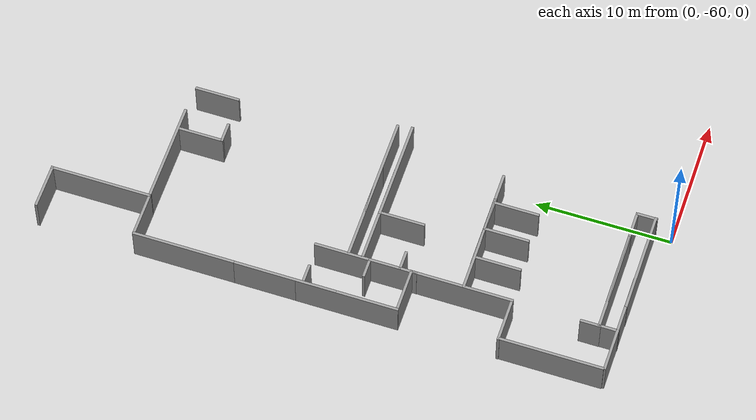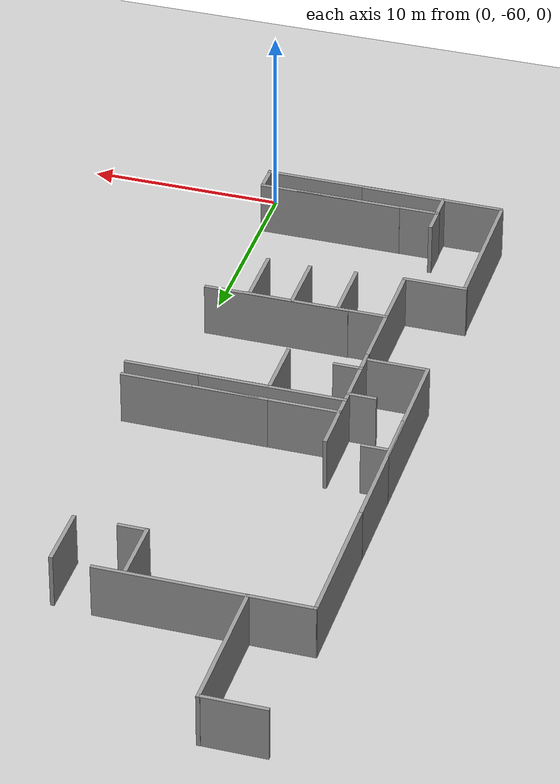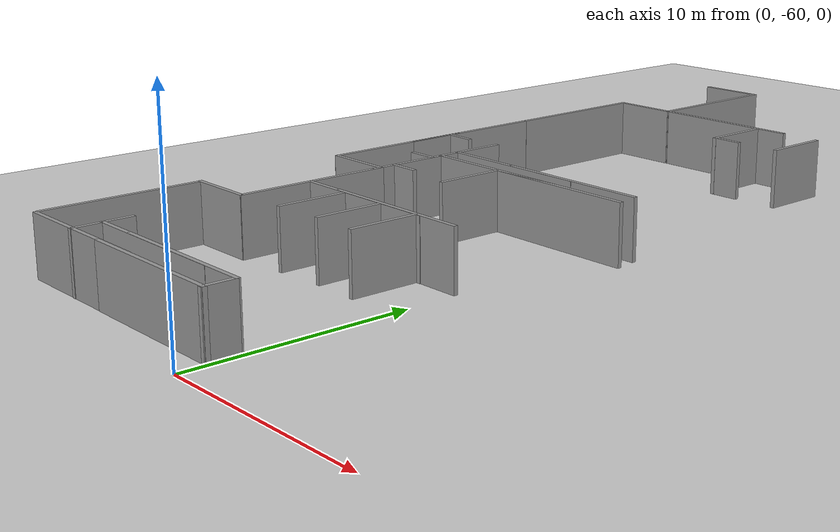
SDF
<sdf version="1.7">
 <world name="default">
  <model name="ground_plane">
   <static>1</static>
   <link name="link">
    <collision name="collision">
     <geometry><plane><normal>0 0 1</normal><size>100 100</size></plane></geometry>
     <surface>
      <contact><collide_bitmask>65535</collide_bitmask></contact>
      <friction><ode><mu>100</mu><mu2>50</mu2></ode></friction>
     </surface>
    </collision>
    <visual name="visual">
     <cast_shadows>0</cast_shadows>
     <geometry><plane><normal>0 0 1</normal><size>100 100</size></plane></geometry>
     <material>
      <script><uri>file://media/materials/scripts/gazebo.material</uri><name>Gazebo/Grey</name></script>
     </material>
    </visual>
   </link>
  </model>
  <model name="grey_wall_clone_2_clone_clone_0">
   <static>1</static>
   <link name="link">
    <pose>0 0 1.4 0 -0 0</pose>
    <collision name="collision"><geometry><box><size>7.5 0.2 2.8</size></box></geometry></collision>
    <visual name="visual">
     <cast_shadows>0</cast_shadows>
     <geometry><box><size>7.5 0.2 2.8</size></box></geometry>
     <material>
      <script>
       <uri>model://grey_wall/materials/scripts</uri>
       <uri>model://grey_wall/materials/textures</uri>
       <name>vrc/grey_wall</name>
      </script>
     </material>
    </visual>
   </link>
   <pose>-9.41065 -20.8124 0 0 0 -1.5708</pose>
  </model>
  <model name="half_grey_wall_clone_clone_0">
   <link name="link">
    <pose>0 0 1.4 0 -0 0</pose>
    <inertial>
     <mass>1</mass>
     <inertia><ixx>1</ixx><ixy>0</ixy><ixz>0</ixz><iyy>1</iyy><iyz>0</iyz><izz>1</izz></inertia>
    </inertial>
    <visual name="visual">
     <cast_shadows>0</cast_shadows>
     <geometry><box><size>3.3 0.2 2.8</size></box></geometry>
     <material>
      <script>
       <uri>model://grey_wall/materials/scripts</uri>
       <uri>model://grey_wall/materials/textures</uri>
       <name>vrc/grey_wall</name>
      </script>
      <shader type="pixel"><normal_map>__default__</normal_map></shader>
      <ambient>1 1 1 1</ambient>
      <diffuse>1 1 1 1</diffuse>
      <specular>0 0 0 1</specular>
      <emissive>0 0 0 1</emissive>
     </material>
    </visual>
    <collision name="collision">
     <geometry><box><size>7.5 0.2 2.8</size></box></geometry>
     <surface>
      <friction>
       <ode><mu>1</mu><mu2>1</mu2><fdir1>0 0 0</fdir1><slip1>0</slip1><slip2>0</slip2></ode>
       <torsional>
        <coefficient>1</coefficient>
        <patch_radius>0</patch_radius>
        <surface_radius>0</surface_radius>
        <use_patch_radius>1</use_patch_radius>
        <ode><slip>0</slip></ode>
       </torsional>
      </friction>
      <bounce><restitution_coefficient>0</restitution_coefficient><threshold>1e+06</threshold></bounce>
      <contact>
       <collide_without_contact>0</collide_without_contact>
       <collide_without_contact_bitmask>1</collide_without_contact_bitmask>
       <collide_bitmask>1</collide_bitmask>
       <ode>
        <soft_cfm>0</soft_cfm>
        <soft_erp>0.2</soft_erp>
        <kp>1e+13</kp>
        <kd>1</kd>
        <max_vel>0.01</max_vel>
        <min_depth>0</min_depth>
       </ode>
       <bullet>
        <split_impulse>1</split_impulse>
        <split_impulse_penetration_threshold>-0.01</split_impulse_penetration_threshold>
        <soft_cfm>0</soft_cfm>
        <soft_erp>0.2</soft_erp>
        <kp>1e+13</kp>
        <kd>1</kd>
       </bullet>
      </contact>
     </surface>
    </collision>
   </link>
   <static>1</static>
   <pose>-11.0309 -24.4662 0 0 -0 0</pose>
  </model>
  <model name="grey_wall_clone_0_clone_0_clone">
   <static>1</static>
   <link name="link">
    <pose>0 0 1.4 0 -0 0</pose>
    <collision name="collision"><geometry><box><size>7.5 0.2 2.8</size></box></geometry></collision>
    <visual name="visual">
     <cast_shadows>0</cast_shadows>
     <geometry><box><size>7.5 0.2 2.8</size></box></geometry>
     <material>
      <script>
       <uri>model://grey_wall/materials/scripts</uri>
       <uri>model://grey_wall/materials/textures</uri>
       <name>vrc/grey_wall</name>
      </script>
     </material>
    </visual>
   </link>
   <pose>-5.66971 -24.4526 0 0 -0 0</pose>
  </model>
  <model name="grey_wall_clone_2_clone_2_clone">
   <static>1</static>
   <link name="link">
    <pose>0 0 1.4 0 -0 0</pose>
    <collision name="collision"><geometry><box><size>7.5 0.2 2.8</size></box></geometry></collision>
    <visual name="visual">
     <cast_shadows>0</cast_shadows>
     <geometry><box><size>7.5 0.2 2.8</size></box></geometry>
     <material>
      <script>
       <uri>model://grey_wall/materials/scripts</uri>
       <uri>model://grey_wall/materials/textures</uri>
       <name>vrc/grey_wall</name>
      </script>
     </material>
    </visual>
   </link>
   <pose>-12.6184 -28.1335 0 0 0 -1.5708</pose>
  </model>
  <model name="grey_wall_clone_2_clone_2_clone_2">
   <static>1</static>
   <link name="link">
    <pose>0 0 1.4 0 -0 0</pose>
    <collision name="collision"><geometry><box><size>7.5 0.2 2.8</size></box></geometry></collision>
    <visual name="visual">
     <cast_shadows>0</cast_shadows>
     <geometry><box><size>7.5 0.2 2.8</size></box></geometry>
     <material>
      <script>
       <uri>model://grey_wall/materials/scripts</uri>
       <uri>model://grey_wall/materials/textures</uri>
       <name>vrc/grey_wall</name>
      </script>
     </material>
    </visual>
   </link>
   <pose>-12.6232 -35.6178 0 0 0 -1.5708</pose>
  </model>
  <model name="grey_wall_clone_2_clone_2_clone_3">
   <static>1</static>
   <link name="link">
    <pose>0 0 1.4 0 -0 0</pose>
    <collision name="collision"><geometry><box><size>7.5 0.2 2.8</size></box></geometry></collision>
    <visual name="visual">
     <cast_shadows>0</cast_shadows>
     <geometry><box><size>7.5 0.2 2.8</size></box></geometry>
     <material>
      <script>
       <uri>model://grey_wall/materials/scripts</uri>
       <uri>model://grey_wall/materials/textures</uri>
       <name>vrc/grey_wall</name>
      </script>
     </material>
    </visual>
   </link>
   <pose>-12.6269 -40.135 0 0 0 -1.5708</pose>
  </model>
  <model name="grey_wall_clone_2_clone_clone_0_clone">
   <static>1</static>
   <link name="link">
    <pose>0 0 1.4 0 -0 0</pose>
    <collision name="collision"><geometry><box><size>7.5 0.2 2.8</size></box></geometry></collision>
    <visual name="visual">
     <cast_shadows>0</cast_shadows>
     <geometry><box><size>7.5 0.2 2.8</size></box></geometry>
     <material>
      <script>
       <uri>model://grey_wall/materials/scripts</uri>
       <uri>model://grey_wall/materials/textures</uri>
       <name>vrc/grey_wall</name>
      </script>
     </material>
    </visual>
   </link>
   <pose>-9.46912 -47.4395 0 0 0 -1.5708</pose>
  </model>
  <model name="grey_wall_clone_2_clone_2_clone_1_clone_1">
   <static>1</static>
   <link name="link">
    <pose>0 0 1.4 0 -0 0</pose>
    <collision name="collision"><geometry><box><size>7.5 0.2 2.8</size></box></geometry></collision>
    <visual name="visual">
     <cast_shadows>0</cast_shadows>
     <geometry><box><size>7.5 0.2 2.8</size></box></geometry>
     <material>
      <script>
       <uri>model://grey_wall/materials/scripts</uri>
       <uri>model://grey_wall/materials/textures</uri>
       <name>vrc/grey_wall</name>
      </script>
     </material>
    </visual>
   </link>
   <pose>-12.5913 -54.87 0 0 0 -1.5708</pose>
  </model>
  <model name="grey_wall_clone_2_clone_clone_0_clone_clone">
   <static>1</static>
   <link name="link">
    <pose>0 0 1.4 0 -0 0</pose>
    <collision name="collision"><geometry><box><size>7.5 0.2 2.8</size></box></geometry></collision>
    <visual name="visual">
     <cast_shadows>0</cast_shadows>
     <geometry><box><size>7.5 0.2 2.8</size></box></geometry>
     <material>
      <script>
       <uri>model://grey_wall/materials/scripts</uri>
       <uri>model://grey_wall/materials/textures</uri>
       <name>vrc/grey_wall</name>
      </script>
     </material>
    </visual>
   </link>
   <pose>-9.47835 -40.455 0 0 0 -1.5708</pose>
  </model>
  <model name="grey_wall_clone_0_clone_0_clone_clone">
   <static>1</static>
   <link name="link">
    <pose>0 0 1.4 0 -0 0</pose>
    <collision name="collision"><geometry><box><size>7.5 0.2 2.8</size></box></geometry></collision>
    <visual name="visual">
     <cast_shadows>0</cast_shadows>
     <geometry><box><size>7.5 0.2 2.8</size></box></geometry>
     <material>
      <script>
       <uri>model://grey_wall/materials/scripts</uri>
       <uri>model://grey_wall/materials/textures</uri>
       <name>vrc/grey_wall</name>
      </script>
     </material>
    </visual>
   </link>
   <pose>-2.16074 -39.1905 0 0 -0 0</pose>
  </model>
  <model name="grey_wall_clone_0_clone_0_clone_clone_0">
   <static>1</static>
   <link name="link">
    <pose>0 0 1.4 0 -0 0</pose>
    <collision name="collision"><geometry><box><size>7.5 0.2 2.8</size></box></geometry></collision>
    <visual name="visual">
     <cast_shadows>0</cast_shadows>
     <geometry><box><size>7.5 0.2 2.8</size></box></geometry>
     <material>
      <script>
       <uri>model://grey_wall/materials/scripts</uri>
       <uri>model://grey_wall/materials/textures</uri>
       <name>vrc/grey_wall</name>
      </script>
     </material>
    </visual>
   </link>
   <pose>-5.79782 -39.197 0 0 -0 0</pose>
  </model>
  <model name="grey_wall_clone_0_clone_0_clone_clone_1">
   <static>1</static>
   <link name="link">
    <pose>0 0 1.4 0 -0 0</pose>
    <collision name="collision"><geometry><box><size>7.5 0.2 2.8</size></box></geometry></collision>
    <visual name="visual">
     <cast_shadows>0</cast_shadows>
     <geometry><box><size>7.5 0.2 2.8</size></box></geometry>
     <material>
      <script>
       <uri>model://grey_wall/materials/scripts</uri>
       <uri>model://grey_wall/materials/textures</uri>
       <name>vrc/grey_wall</name>
      </script>
     </material>
    </visual>
   </link>
   <pose>-2.00004 -40.2283 0 0 -0 0</pose>
  </model>
  <model name="grey_wall_clone_0_clone_0_clone_clone_2">
   <static>1</static>
   <link name="link">
    <pose>0 0 1.4 0 -0 0</pose>
    <collision name="collision"><geometry><box><size>7.5 0.2 2.8</size></box></geometry></collision>
    <visual name="visual">
     <cast_shadows>0</cast_shadows>
     <geometry><box><size>7.5 0.2 2.8</size></box></geometry>
     <material>
      <script>
       <uri>model://grey_wall/materials/scripts</uri>
       <uri>model://grey_wall/materials/textures</uri>
       <name>vrc/grey_wall</name>
      </script>
     </material>
    </visual>
   </link>
   <pose>-5.81716 -40.22 0 0 -0 0</pose>
  </model>
  <model name="grey_wall_clone_0_clone_0_clone_clone_1_clone">
   <static>1</static>
   <link name="link">
    <pose>0 0 1.4 0 -0 0</pose>
    <collision name="collision"><geometry><box><size>7.5 0.2 2.8</size></box></geometry></collision>
    <visual name="visual">
     <cast_shadows>0</cast_shadows>
     <geometry><box><size>7.5 0.2 2.8</size></box></geometry>
     <material>
      <script>
       <uri>model://grey_wall/materials/scripts</uri>
       <uri>model://grey_wall/materials/textures</uri>
       <name>vrc/grey_wall</name>
      </script>
     </material>
    </visual>
   </link>
   <pose>-5.8029 -47.5938 0 0 -0 0</pose>
  </model>
  <model name="grey_wall_clone_0_clone_0_clone_clone_1_clone_0">
   <static>1</static>
   <link name="link">
    <pose>0 0 1.4 0 -0 0</pose>
    <collision name="collision"><geometry><box><size>7.5 0.2 2.8</size></box></geometry></collision>
    <visual name="visual">
     <cast_shadows>0</cast_shadows>
     <geometry><box><size>7.5 0.2 2.8</size></box></geometry>
     <material>
      <script>
       <uri>model://grey_wall/materials/scripts</uri>
       <uri>model://grey_wall/materials/textures</uri>
       <name>vrc/grey_wall</name>
      </script>
     </material>
    </visual>
   </link>
   <pose>-3.76168 -57.3524 0 0 -0 0</pose>
  </model>
  <model name="grey_wall_clone_0_clone_0_clone_clone_1_clone_1">
   <static>1</static>
   <link name="link">
    <pose>0 0 1.4 0 -0 0</pose>
    <collision name="collision"><geometry><box><size>7.5 0.2 2.8</size></box></geometry></collision>
    <visual name="visual">
     <cast_shadows>0</cast_shadows>
     <geometry><box><size>7.5 0.2 2.8</size></box></geometry>
     <material>
      <script>
       <uri>model://grey_wall/materials/scripts</uri>
       <uri>model://grey_wall/materials/textures</uri>
       <name>vrc/grey_wall</name>
      </script>
     </material>
    </visual>
   </link>
   <pose>-3.73175 -58.6913 0 0 -0 0</pose>
  </model>
  <model name="grey_wall_clone_0_clone_0_clone_clone_1_clone_clone">
   <static>1</static>
   <link name="link">
    <pose>0 0 1.4 0 -0 0</pose>
    <collision name="collision"><geometry><box><size>7.5 0.2 2.8</size></box></geometry></collision>
    <visual name="visual">
     <cast_shadows>0</cast_shadows>
     <geometry><box><size>7.5 0.2 2.8</size></box></geometry>
     <material>
      <script>
       <uri>model://grey_wall/materials/scripts</uri>
       <uri>model://grey_wall/materials/textures</uri>
       <name>vrc/grey_wall</name>
      </script>
     </material>
    </visual>
   </link>
   <pose>-3.78514 -47.5712 0 0 -0 0</pose>
  </model>
  <model name="fixed_half_clone_4">
   <link name="link">
    <pose>0 0 1.4 0 -0 0</pose>
    <inertial>
     <mass>1</mass>
     <inertia><ixx>1</ixx><ixy>0</ixy><ixz>0</ixz><iyy>1</iyy><iyz>0</iyz><izz>1</izz></inertia>
    </inertial>
    <visual name="visual">
     <cast_shadows>0</cast_shadows>
     <geometry><box><size>3.3 0.2 2.8</size></box></geometry>
     <material>
      <script>
       <uri>model://grey_wall/materials/scripts</uri>
       <uri>model://grey_wall/materials/textures</uri>
       <name>vrc/grey_wall</name>
      </script>
      <shader type="pixel"><normal_map>__default__</normal_map></shader>
      <ambient>1 1 1 1</ambient>
      <diffuse>1 1 1 1</diffuse>
      <specular>0 0 0 1</specular>
      <emissive>0 0 0 1</emissive>
     </material>
    </visual>
    <collision name="collision">
     <geometry><box><size>3.3 0.2 2.8</size></box></geometry>
     <surface>
      <friction>
       <ode><mu>1</mu><mu2>1</mu2><fdir1>0 0 0</fdir1><slip1>0</slip1><slip2>0</slip2></ode>
       <torsional>
        <coefficient>1</coefficient>
        <patch_radius>0</patch_radius>
        <surface_radius>0</surface_radius>
        <use_patch_radius>1</use_patch_radius>
        <ode><slip>0</slip></ode>
       </torsional>
      </friction>
      <bounce><restitution_coefficient>0</restitution_coefficient><threshold>1e+06</threshold></bounce>
      <contact>
       <collide_without_contact>0</collide_without_contact>
       <collide_without_contact_bitmask>1</collide_without_contact_bitmask>
       <collide_bitmask>1</collide_bitmask>
       <ode>
        <soft_cfm>0</soft_cfm>
        <soft_erp>0.2</soft_erp>
        <kp>1e+13</kp>
        <kd>1</kd>
        <max_vel>0.01</max_vel>
        <min_depth>0</min_depth>
       </ode>
       <bullet>
        <split_impulse>1</split_impulse>
        <split_impulse_penetration_threshold>-0.01</split_impulse_penetration_threshold>
        <soft_cfm>0</soft_cfm>
        <soft_erp>0.2</soft_erp>
        <kp>1e+13</kp>
        <kd>1</kd>
       </bullet>
      </contact>
     </surface>
    </collision>
   </link>
   <static>1</static>
   <pose>-3.54136 -26.2044 0 0 0 -1.5708</pose>
  </model>
  <model name="fixed_half_clone_5_clone_0">
   <link name="link">
    <pose>0 0 1.4 0 -0 0</pose>
    <inertial>
     <mass>1</mass>
     <inertia><ixx>1</ixx><ixy>0</ixy><ixz>0</ixz><iyy>1</iyy><iyz>0</iyz><izz>1</izz></inertia>
    </inertial>
    <visual name="visual">
     <cast_shadows>0</cast_shadows>
     <geometry><box><size>3.3 0.2 2.8</size></box></geometry>
     <material>
      <script>
       <uri>model://grey_wall/materials/scripts</uri>
       <uri>model://grey_wall/materials/textures</uri>
       <name>vrc/grey_wall</name>
      </script>
      <shader type="pixel"><normal_map>__default__</normal_map></shader>
      <ambient>1 1 1 1</ambient>
      <diffuse>1 1 1 1</diffuse>
      <specular>0 0 0 1</specular>
      <emissive>0 0 0 1</emissive>
     </material>
    </visual>
    <collision name="collision">
     <geometry><box><size>3.3 0.2 2.8</size></box></geometry>
     <surface>
      <friction>
       <ode><mu>1</mu><mu2>1</mu2><fdir1>0 0 0</fdir1><slip1>0</slip1><slip2>0</slip2></ode>
       <torsional>
        <coefficient>1</coefficient>
        <patch_radius>0</patch_radius>
        <surface_radius>0</surface_radius>
        <use_patch_radius>1</use_patch_radius>
        <ode><slip>0</slip></ode>
       </torsional>
      </friction>
      <bounce><restitution_coefficient>0</restitution_coefficient><threshold>1e+06</threshold></bounce>
      <contact>
       <collide_without_contact>0</collide_without_contact>
       <collide_without_contact_bitmask>1</collide_without_contact_bitmask>
       <collide_bitmask>1</collide_bitmask>
       <ode>
        <soft_cfm>0</soft_cfm>
        <soft_erp>0.2</soft_erp>
        <kp>1e+13</kp>
        <kd>1</kd>
        <max_vel>0.01</max_vel>
        <min_depth>0</min_depth>
       </ode>
       <bullet>
        <split_impulse>1</split_impulse>
        <split_impulse_penetration_threshold>-0.01</split_impulse_penetration_threshold>
        <soft_cfm>0</soft_cfm>
        <soft_erp>0.2</soft_erp>
        <kp>1e+13</kp>
        <kd>1</kd>
       </bullet>
      </contact>
     </surface>
    </collision>
   </link>
   <static>1</static>
   <pose>-5.64282 -41.8792 0 0 0 -1.5708</pose>
  </model>
  <model name="half_wall_clone_0_clone_clone_clone_clone">
   <link name="link">
    <pose>0 0 1.4 0 -0 0</pose>
    <inertial>
     <mass>1</mass>
     <inertia><ixx>1</ixx><ixy>0</ixy><ixz>0</ixz><iyy>1</iyy><iyz>0</iyz><izz>1</izz></inertia>
    </inertial>
    <visual name="visual">
     <cast_shadows>0</cast_shadows>
     <geometry><box><size>1.5 0.2 2.8</size></box></geometry>
     <material>
      <script>
       <uri>model://grey_wall/materials/scripts</uri>
       <uri>model://grey_wall/materials/textures</uri>
       <name>vrc/grey_wall</name>
      </script>
      <shader type="pixel"><normal_map>__default__</normal_map></shader>
      <ambient>1 1 1 1</ambient>
      <diffuse>1 1 1 1</diffuse>
      <specular>0 0 0 1</specular>
      <emissive>0 0 0 1</emissive>
     </material>
    </visual>
    <collision name="collision">
     <geometry><box><size>1.5 0.2 2.8</size></box></geometry>
     <surface>
      <friction>
       <ode><mu>1</mu><mu2>1</mu2><fdir1>0 0 0</fdir1><slip1>0</slip1><slip2>0</slip2></ode>
       <torsional>
        <coefficient>1</coefficient>
        <patch_radius>0</patch_radius>
        <surface_radius>0</surface_radius>
        <use_patch_radius>1</use_patch_radius>
        <ode><slip>0</slip></ode>
       </torsional>
      </friction>
      <bounce><restitution_coefficient>0</restitution_coefficient><threshold>1e+06</threshold></bounce>
      <contact>
       <collide_without_contact>0</collide_without_contact>
       <collide_without_contact_bitmask>1</collide_without_contact_bitmask>
       <collide_bitmask>1</collide_bitmask>
       <ode>
        <soft_cfm>0</soft_cfm>
        <soft_erp>0.2</soft_erp>
        <kp>1e+13</kp>
        <kd>1</kd>
        <max_vel>0.01</max_vel>
        <min_depth>0</min_depth>
       </ode>
       <bullet>
        <split_impulse>1</split_impulse>
        <split_impulse_penetration_threshold>-0.01</split_impulse_penetration_threshold>
        <soft_cfm>0</soft_cfm>
        <soft_erp>0.2</soft_erp>
        <kp>1e+13</kp>
        <kd>1</kd>
       </bullet>
      </contact>
     </surface>
    </collision>
   </link>
   <static>1</static>
   <pose>-11.9388 -36.9316 0 0 -0 3.14159</pose>
  </model>
  <model name="half_wall_clone_0_clone_clone_clone_clone_0">
   <link name="link">
    <pose>0 0 1.4 0 -0 0</pose>
    <inertial>
     <mass>1</mass>
     <inertia><ixx>1</ixx><ixy>0</ixy><ixz>0</ixz><iyy>1</iyy><iyz>0</iyz><izz>1</izz></inertia>
    </inertial>
    <visual name="visual">
     <cast_shadows>0</cast_shadows>
     <geometry><box><size>1.5 0.2 2.8</size></box></geometry>
     <material>
      <script>
       <uri>model://grey_wall/materials/scripts</uri>
       <uri>model://grey_wall/materials/textures</uri>
       <name>vrc/grey_wall</name>
      </script>
      <shader type="pixel"><normal_map>__default__</normal_map></shader>
      <ambient>1 1 1 1</ambient>
      <diffuse>1 1 1 1</diffuse>
      <specular>0 0 0 1</specular>
      <emissive>0 0 0 1</emissive>
     </material>
    </visual>
    <collision name="collision">
     <geometry><box><size>1.5 0.2 2.8</size></box></geometry>
     <surface>
      <friction>
       <ode><mu>1</mu><mu2>1</mu2><fdir1>0 0 0</fdir1><slip1>0</slip1><slip2>0</slip2></ode>
       <torsional>
        <coefficient>1</coefficient>
        <patch_radius>0</patch_radius>
        <surface_radius>0</surface_radius>
        <use_patch_radius>1</use_patch_radius>
        <ode><slip>0</slip></ode>
       </torsional>
      </friction>
      <bounce><restitution_coefficient>0</restitution_coefficient><threshold>1e+06</threshold></bounce>
      <contact>
       <collide_without_contact>0</collide_without_contact>
       <collide_without_contact_bitmask>1</collide_without_contact_bitmask>
       <collide_bitmask>1</collide_bitmask>
       <ode>
        <soft_cfm>0</soft_cfm>
        <soft_erp>0.2</soft_erp>
        <kp>1e+13</kp>
        <kd>1</kd>
        <max_vel>0.01</max_vel>
        <min_depth>0</min_depth>
       </ode>
       <bullet>
        <split_impulse>1</split_impulse>
        <split_impulse_penetration_threshold>-0.01</split_impulse_penetration_threshold>
        <soft_cfm>0</soft_cfm>
        <soft_erp>0.2</soft_erp>
        <kp>1e+13</kp>
        <kd>1</kd>
       </bullet>
      </contact>
     </surface>
    </collision>
   </link>
   <static>1</static>
   <pose>-10.1503 -40.7662 0 0 -0 3.14159</pose>
  </model>
  <model name="half_wall_clone_0_clone_clone_clone_clone_1">
   <link name="link">
    <pose>0 0 1.4 0 -0 0</pose>
    <inertial>
     <mass>1</mass>
     <inertia><ixx>1</ixx><ixy>0</ixy><ixz>0</ixz><iyy>1</iyy><iyz>0</iyz><izz>1</izz></inertia>
    </inertial>
    <visual name="visual">
     <cast_shadows>0</cast_shadows>
     <geometry><box><size>1.5 0.2 2.8</size></box></geometry>
     <material>
      <script>
       <uri>model://grey_wall/materials/scripts</uri>
       <uri>model://grey_wall/materials/textures</uri>
       <name>vrc/grey_wall</name>
      </script>
      <shader type="pixel"><normal_map>__default__</normal_map></shader>
      <ambient>1 1 1 1</ambient>
      <diffuse>1 1 1 1</diffuse>
      <specular>0 0 0 1</specular>
      <emissive>0 0 0 1</emissive>
     </material>
    </visual>
    <collision name="collision">
     <geometry><box><size>1.5 0.2 2.8</size></box></geometry>
     <surface>
      <friction>
       <ode><mu>1</mu><mu2>1</mu2><fdir1>0 0 0</fdir1><slip1>0</slip1><slip2>0</slip2></ode>
       <torsional>
        <coefficient>1</coefficient>
        <patch_radius>0</patch_radius>
        <surface_radius>0</surface_radius>
        <use_patch_radius>1</use_patch_radius>
        <ode><slip>0</slip></ode>
       </torsional>
      </friction>
      <bounce><restitution_coefficient>0</restitution_coefficient><threshold>1e+06</threshold></bounce>
      <contact>
       <collide_without_contact>0</collide_without_contact>
       <collide_without_contact_bitmask>1</collide_without_contact_bitmask>
       <collide_bitmask>1</collide_bitmask>
       <ode>
        <soft_cfm>0</soft_cfm>
        <soft_erp>0.2</soft_erp>
        <kp>1e+13</kp>
        <kd>1</kd>
        <max_vel>0.01</max_vel>
        <min_depth>0</min_depth>
       </ode>
       <bullet>
        <split_impulse>1</split_impulse>
        <split_impulse_penetration_threshold>-0.01</split_impulse_penetration_threshold>
        <soft_cfm>0</soft_cfm>
        <soft_erp>0.2</soft_erp>
        <kp>1e+13</kp>
        <kd>1</kd>
       </bullet>
      </contact>
     </surface>
    </collision>
   </link>
   <static>1</static>
   <pose>-8.82424 -42.977 0 0 -0 3.14159</pose>
  </model>
  <model name="fixed_half_clone_5_clone_1_clone">
   <link name="link">
    <pose>0 0 1.4 0 -0 0</pose>
    <inertial>
     <mass>1</mass>
     <inertia><ixx>1</ixx><ixy>0</ixy><ixz>0</ixz><iyy>1</iyy><iyz>0</iyz><izz>1</izz></inertia>
    </inertial>
    <visual name="visual">
     <cast_shadows>0</cast_shadows>
     <geometry><box><size>3.3 0.2 2.8</size></box></geometry>
     <material>
      <script>
       <uri>model://grey_wall/materials/scripts</uri>
       <uri>model://grey_wall/materials/textures</uri>
       <name>vrc/grey_wall</name>
      </script>
      <shader type="pixel"><normal_map>__default__</normal_map></shader>
      <ambient>1 1 1 1</ambient>
      <diffuse>1 1 1 1</diffuse>
      <specular>0 0 0 1</specular>
      <emissive>0 0 0 1</emissive>
     </material>
    </visual>
    <collision name="collision">
     <geometry><box><size>3.3 0.2 2.8</size></box></geometry>
     <surface>
      <friction>
       <ode><mu>1</mu><mu2>1</mu2><fdir1>0 0 0</fdir1><slip1>0</slip1><slip2>0</slip2></ode>
       <torsional>
        <coefficient>1</coefficient>
        <patch_radius>0</patch_radius>
        <surface_radius>0</surface_radius>
        <use_patch_radius>1</use_patch_radius>
        <ode><slip>0</slip></ode>
       </torsional>
      </friction>
      <bounce><restitution_coefficient>0</restitution_coefficient><threshold>1e+06</threshold></bounce>
      <contact>
       <collide_without_contact>0</collide_without_contact>
       <collide_without_contact_bitmask>1</collide_without_contact_bitmask>
       <collide_bitmask>1</collide_bitmask>
       <ode>
        <soft_cfm>0</soft_cfm>
        <soft_erp>0.2</soft_erp>
        <kp>1e+13</kp>
        <kd>1</kd>
        <max_vel>0.01</max_vel>
        <min_depth>0</min_depth>
       </ode>
       <bullet>
        <split_impulse>1</split_impulse>
        <split_impulse_penetration_threshold>-0.01</split_impulse_penetration_threshold>
        <soft_cfm>0</soft_cfm>
        <soft_erp>0.2</soft_erp>
        <kp>1e+13</kp>
        <kd>1</kd>
       </bullet>
      </contact>
     </surface>
    </collision>
   </link>
   <static>1</static>
   <pose>-11.0662 -43.7882 0 0 -0 3.14159</pose>
  </model>
  <model name="fixed_half_clone_5_clone_1_clone_0">
   <link name="link">
    <pose>0 0 1.4 0 -0 0</pose>
    <inertial>
     <mass>1</mass>
     <inertia><ixx>1</ixx><ixy>0</ixy><ixz>0</ixz><iyy>1</iyy><iyz>0</iyz><izz>1</izz></inertia>
    </inertial>
    <visual name="visual">
     <cast_shadows>0</cast_shadows>
     <geometry><box><size>3.3 0.2 2.8</size></box></geometry>
     <material>
      <script>
       <uri>model://grey_wall/materials/scripts</uri>
       <uri>model://grey_wall/materials/textures</uri>
       <name>vrc/grey_wall</name>
      </script>
      <shader type="pixel"><normal_map>__default__</normal_map></shader>
      <ambient>1 1 1 1</ambient>
      <diffuse>1 1 1 1</diffuse>
      <specular>0 0 0 1</specular>
      <emissive>0 0 0 1</emissive>
     </material>
    </visual>
    <collision name="collision">
     <geometry><box><size>3.3 0.2 2.8</size></box></geometry>
     <surface>
      <friction>
       <ode><mu>1</mu><mu2>1</mu2><fdir1>0 0 0</fdir1><slip1>0</slip1><slip2>0</slip2></ode>
       <torsional>
        <coefficient>1</coefficient>
        <patch_radius>0</patch_radius>
        <surface_radius>0</surface_radius>
        <use_patch_radius>1</use_patch_radius>
        <ode><slip>0</slip></ode>
       </torsional>
      </friction>
      <bounce><restitution_coefficient>0</restitution_coefficient><threshold>1e+06</threshold></bounce>
      <contact>
       <collide_without_contact>0</collide_without_contact>
       <collide_without_contact_bitmask>1</collide_without_contact_bitmask>
       <collide_bitmask>1</collide_bitmask>
       <ode>
        <soft_cfm>0</soft_cfm>
        <soft_erp>0.2</soft_erp>
        <kp>1e+13</kp>
        <kd>1</kd>
        <max_vel>0.01</max_vel>
        <min_depth>0</min_depth>
       </ode>
       <bullet>
        <split_impulse>1</split_impulse>
        <split_impulse_penetration_threshold>-0.01</split_impulse_penetration_threshold>
        <soft_cfm>0</soft_cfm>
        <soft_erp>0.2</soft_erp>
        <kp>1e+13</kp>
        <kd>1</kd>
       </bullet>
      </contact>
     </surface>
    </collision>
   </link>
   <static>1</static>
   <pose>-11.0666 -51.0949 0 0 -0 3.14159</pose>
  </model>
  <model name="fixed_half_clone_6">
   <link name="link">
    <pose>0 0 1.4 0 -0 0</pose>
    <inertial>
     <mass>1</mass>
     <inertia><ixx>1</ixx><ixy>0</ixy><ixz>0</ixz><iyy>1</iyy><iyz>0</iyz><izz>1</izz></inertia>
    </inertial>
    <visual name="visual">
     <cast_shadows>0</cast_shadows>
     <geometry><box><size>3.3 0.2 2.8</size></box></geometry>
     <material>
      <script>
       <uri>model://grey_wall/materials/scripts</uri>
       <uri>model://grey_wall/materials/textures</uri>
       <name>vrc/grey_wall</name>
      </script>
      <shader type="pixel"><normal_map>__default__</normal_map></shader>
      <ambient>1 1 1 1</ambient>
      <diffuse>1 1 1 1</diffuse>
      <specular>0 0 0 1</specular>
      <emissive>0 0 0 1</emissive>
     </material>
    </visual>
    <collision name="collision">
     <geometry><box><size>3.3 0.2 2.8</size></box></geometry>
     <surface>
      <friction>
       <ode><mu>1</mu><mu2>1</mu2><fdir1>0 0 0</fdir1><slip1>0</slip1><slip2>0</slip2></ode>
       <torsional>
        <coefficient>1</coefficient>
        <patch_radius>0</patch_radius>
        <surface_radius>0</surface_radius>
        <use_patch_radius>1</use_patch_radius>
        <ode><slip>0</slip></ode>
       </torsional>
      </friction>
      <bounce><restitution_coefficient>0</restitution_coefficient><threshold>1e+06</threshold></bounce>
      <contact>
       <collide_without_contact>0</collide_without_contact>
       <collide_without_contact_bitmask>1</collide_without_contact_bitmask>
       <collide_bitmask>1</collide_bitmask>
       <ode>
        <soft_cfm>0</soft_cfm>
        <soft_erp>0.2</soft_erp>
        <kp>1e+13</kp>
        <kd>1</kd>
        <max_vel>0.01</max_vel>
        <min_depth>0</min_depth>
       </ode>
       <bullet>
        <split_impulse>1</split_impulse>
        <split_impulse_penetration_threshold>-0.01</split_impulse_penetration_threshold>
        <soft_cfm>0</soft_cfm>
        <soft_erp>0.2</soft_erp>
        <kp>1e+13</kp>
        <kd>1</kd>
       </bullet>
      </contact>
     </surface>
    </collision>
   </link>
   <static>1</static>
   <pose>-6.97502 -49.3339 0 0 0 -1.5708</pose>
  </model>
  <model name="fixed_half_clone_7">
   <link name="link">
    <pose>0 0 1.4 0 -0 0</pose>
    <inertial>
     <mass>1</mass>
     <inertia><ixx>1</ixx><ixy>0</ixy><ixz>0</ixz><iyy>1</iyy><iyz>0</iyz><izz>1</izz></inertia>
    </inertial>
    <visual name="visual">
     <cast_shadows>0</cast_shadows>
     <geometry><box><size>3.3 0.2 2.8</size></box></geometry>
     <material>
      <script>
       <uri>model://grey_wall/materials/scripts</uri>
       <uri>model://grey_wall/materials/textures</uri>
       <name>vrc/grey_wall</name>
      </script>
      <shader type="pixel"><normal_map>__default__</normal_map></shader>
      <ambient>1 1 1 1</ambient>
      <diffuse>1 1 1 1</diffuse>
      <specular>0 0 0 1</specular>
      <emissive>0 0 0 1</emissive>
     </material>
    </visual>
    <collision name="collision">
     <geometry><box><size>3.3 0.2 2.8</size></box></geometry>
     <surface>
      <friction>
       <ode><mu>1</mu><mu2>1</mu2><fdir1>0 0 0</fdir1><slip1>0</slip1><slip2>0</slip2></ode>
       <torsional>
        <coefficient>1</coefficient>
        <patch_radius>0</patch_radius>
        <surface_radius>0</surface_radius>
        <use_patch_radius>1</use_patch_radius>
        <ode><slip>0</slip></ode>
       </torsional>
      </friction>
      <bounce><restitution_coefficient>0</restitution_coefficient><threshold>1e+06</threshold></bounce>
      <contact>
       <collide_without_contact>0</collide_without_contact>
       <collide_without_contact_bitmask>1</collide_without_contact_bitmask>
       <collide_bitmask>1</collide_bitmask>
       <ode>
        <soft_cfm>0</soft_cfm>
        <soft_erp>0.2</soft_erp>
        <kp>1e+13</kp>
        <kd>1</kd>
        <max_vel>0.01</max_vel>
        <min_depth>0</min_depth>
       </ode>
       <bullet>
        <split_impulse>1</split_impulse>
        <split_impulse_penetration_threshold>-0.01</split_impulse_penetration_threshold>
        <soft_cfm>0</soft_cfm>
        <soft_erp>0.2</soft_erp>
        <kp>1e+13</kp>
        <kd>1</kd>
       </bullet>
      </contact>
     </surface>
    </collision>
   </link>
   <static>1</static>
   <pose>-4.59452 -49.1861 0 0 0 -1.5708</pose>
  </model>
  <model name="fixed_half_clone_8">
   <link name="link">
    <pose>0 0 1.4 0 -0 0</pose>
    <inertial>
     <mass>1</mass>
     <inertia><ixx>1</ixx><ixy>0</ixy><ixz>0</ixz><iyy>1</iyy><iyz>0</iyz><izz>1</izz></inertia>
    </inertial>
    <visual name="visual">
     <cast_shadows>0</cast_shadows>
     <geometry><box><size>3.3 0.2 2.8</size></box></geometry>
     <material>
      <script>
       <uri>model://grey_wall/materials/scripts</uri>
       <uri>model://grey_wall/materials/textures</uri>
       <name>vrc/grey_wall</name>
      </script>
      <shader type="pixel"><normal_map>__default__</normal_map></shader>
      <ambient>1 1 1 1</ambient>
      <diffuse>1 1 1 1</diffuse>
      <specular>0 0 0 1</specular>
      <emissive>0 0 0 1</emissive>
     </material>
    </visual>
    <collision name="collision">
     <geometry><box><size>3.3 0.2 2.8</size></box></geometry>
     <surface>
      <friction>
       <ode><mu>1</mu><mu2>1</mu2><fdir1>0 0 0</fdir1><slip1>0</slip1><slip2>0</slip2></ode>
       <torsional>
        <coefficient>1</coefficient>
        <patch_radius>0</patch_radius>
        <surface_radius>0</surface_radius>
        <use_patch_radius>1</use_patch_radius>
        <ode><slip>0</slip></ode>
       </torsional>
      </friction>
      <bounce><restitution_coefficient>0</restitution_coefficient><threshold>1e+06</threshold></bounce>
      <contact>
       <collide_without_contact>0</collide_without_contact>
       <collide_without_contact_bitmask>1</collide_without_contact_bitmask>
       <collide_bitmask>1</collide_bitmask>
       <ode>
        <soft_cfm>0</soft_cfm>
        <soft_erp>0.2</soft_erp>
        <kp>1e+13</kp>
        <kd>1</kd>
        <max_vel>0.01</max_vel>
        <min_depth>0</min_depth>
       </ode>
       <bullet>
        <split_impulse>1</split_impulse>
        <split_impulse_penetration_threshold>-0.01</split_impulse_penetration_threshold>
        <soft_cfm>0</soft_cfm>
        <soft_erp>0.2</soft_erp>
        <kp>1e+13</kp>
        <kd>1</kd>
       </bullet>
      </contact>
     </surface>
    </collision>
   </link>
   <static>1</static>
   <pose>-2.37324 -49.2283 0 0 0 -1.5708</pose>
  </model>
  <model name="half_wall_clone_0_clone_clone_clone_0">
   <link name="link">
    <pose>0 0 1.4 0 -0 0</pose>
    <inertial>
     <mass>1</mass>
     <inertia><ixx>1</ixx><ixy>0</ixy><ixz>0</ixz><iyy>1</iyy><iyz>0</iyz><izz>1</izz></inertia>
    </inertial>
    <visual name="visual">
     <cast_shadows>0</cast_shadows>
     <geometry><box><size>1.5 0.2 2.8</size></box></geometry>
     <material>
      <script>
       <uri>model://grey_wall/materials/scripts</uri>
       <uri>model://grey_wall/materials/textures</uri>
       <name>vrc/grey_wall</name>
      </script>
      <shader type="pixel"><normal_map>__default__</normal_map></shader>
      <ambient>1 1 1 1</ambient>
      <diffuse>1 1 1 1</diffuse>
      <specular>0 0 0 1</specular>
      <emissive>0 0 0 1</emissive>
     </material>
    </visual>
    <collision name="collision">
     <geometry><box><size>1.5 0.2 2.8</size></box></geometry>
     <surface>
      <friction>
       <ode><mu>1</mu><mu2>1</mu2><fdir1>0 0 0</fdir1><slip1>0</slip1><slip2>0</slip2></ode>
       <torsional>
        <coefficient>1</coefficient>
        <patch_radius>0</patch_radius>
        <surface_radius>0</surface_radius>
        <use_patch_radius>1</use_patch_radius>
        <ode><slip>0</slip></ode>
       </torsional>
      </friction>
      <bounce><restitution_coefficient>0</restitution_coefficient><threshold>1e+06</threshold></bounce>
      <contact>
       <collide_without_contact>0</collide_without_contact>
       <collide_without_contact_bitmask>1</collide_without_contact_bitmask>
       <collide_bitmask>1</collide_bitmask>
       <ode>
        <soft_cfm>0</soft_cfm>
        <soft_erp>0.2</soft_erp>
        <kp>1e+13</kp>
        <kd>1</kd>
        <max_vel>0.01</max_vel>
        <min_depth>0</min_depth>
       </ode>
       <bullet>
        <split_impulse>1</split_impulse>
        <split_impulse_penetration_threshold>-0.01</split_impulse_penetration_threshold>
        <soft_cfm>0</soft_cfm>
        <soft_erp>0.2</soft_erp>
        <kp>1e+13</kp>
        <kd>1</kd>
       </bullet>
      </contact>
     </surface>
    </collision>
   </link>
   <static>1</static>
   <pose>-0.096762 -58.0864 0 0 0 -1.5708</pose>
  </model>
  <model name="fixed_half_clone_18">
   <link name="link">
    <pose>0 0 1.4 0 -0 0</pose>
    <inertial>
     <mass>1</mass>
     <inertia><ixx>1</ixx><ixy>0</ixy><ixz>0</ixz><iyy>1</iyy><iyz>0</iyz><izz>1</izz></inertia>
    </inertial>
    <visual name="visual">
     <cast_shadows>0</cast_shadows>
     <geometry><box><size>3.3 0.2 2.8</size></box></geometry>
     <material>
      <script>
       <uri>model://grey_wall/materials/scripts</uri>
       <uri>model://grey_wall/materials/textures</uri>
       <name>vrc/grey_wall</name>
      </script>
      <shader type="pixel"><normal_map>__default__</normal_map></shader>
      <ambient>1 1 1 1</ambient>
      <diffuse>1 1 1 1</diffuse>
      <specular>0 0 0 1</specular>
      <emissive>0 0 0 1</emissive>
     </material>
    </visual>
    <collision name="collision">
     <geometry><box><size>3.3 0.2 2.8</size></box></geometry>
     <surface>
      <friction>
       <ode><mu>1</mu><mu2>1</mu2><fdir1>0 0 0</fdir1><slip1>0</slip1><slip2>0</slip2></ode>
       <torsional>
        <coefficient>1</coefficient>
        <patch_radius>0</patch_radius>
        <surface_radius>0</surface_radius>
        <use_patch_radius>1</use_patch_radius>
        <ode><slip>0</slip></ode>
       </torsional>
      </friction>
      <bounce><restitution_coefficient>0</restitution_coefficient><threshold>1e+06</threshold></bounce>
      <contact>
       <collide_without_contact>0</collide_without_contact>
       <collide_without_contact_bitmask>1</collide_without_contact_bitmask>
       <collide_bitmask>1</collide_bitmask>
       <ode>
        <soft_cfm>0</soft_cfm>
        <soft_erp>0.2</soft_erp>
        <kp>1e+13</kp>
        <kd>1</kd>
        <max_vel>0.01</max_vel>
        <min_depth>0</min_depth>
       </ode>
       <bullet>
        <split_impulse>1</split_impulse>
        <split_impulse_penetration_threshold>-0.01</split_impulse_penetration_threshold>
        <soft_cfm>0</soft_cfm>
        <soft_erp>0.2</soft_erp>
        <kp>1e+13</kp>
        <kd>1</kd>
       </bullet>
      </contact>
     </surface>
    </collision>
   </link>
   <static>1</static>
   <pose>-11.0165 -17.172 0 0 -0 3.14159</pose>
  </model>
  <model name="half_wall_clone_0_clone_clone_clone_8">
   <link name="link">
    <pose>0 0 1.4 0 -0 0</pose>
    <inertial>
     <mass>1</mass>
     <inertia><ixx>1</ixx><ixy>0</ixy><ixz>0</ixz><iyy>1</iyy><iyz>0</iyz><izz>1</izz></inertia>
    </inertial>
    <visual name="visual">
     <cast_shadows>0</cast_shadows>
     <geometry><box><size>1.5 0.2 2.8</size></box></geometry>
     <material>
      <script>
       <uri>model://grey_wall/materials/scripts</uri>
       <uri>model://grey_wall/materials/textures</uri>
       <name>vrc/grey_wall</name>
      </script>
      <shader type="pixel"><normal_map>__default__</normal_map></shader>
      <ambient>1 1 1 1</ambient>
      <diffuse>1 1 1 1</diffuse>
      <specular>0 0 0 1</specular>
      <emissive>0 0 0 1</emissive>
     </material>
    </visual>
    <collision name="collision">
     <geometry><box><size>1.5 0.2 2.8</size></box></geometry>
     <surface>
      <friction>
       <ode><mu>1</mu><mu2>1</mu2><fdir1>0 0 0</fdir1><slip1>0</slip1><slip2>0</slip2></ode>
       <torsional>
        <coefficient>1</coefficient>
        <patch_radius>0</patch_radius>
        <surface_radius>0</surface_radius>
        <use_patch_radius>1</use_patch_radius>
        <ode><slip>0</slip></ode>
       </torsional>
      </friction>
      <bounce><restitution_coefficient>0</restitution_coefficient><threshold>1e+06</threshold></bounce>
      <contact>
       <collide_without_contact>0</collide_without_contact>
       <collide_without_contact_bitmask>1</collide_without_contact_bitmask>
       <collide_bitmask>1</collide_bitmask>
       <ode>
        <soft_cfm>0</soft_cfm>
        <soft_erp>0.2</soft_erp>
        <kp>1e+13</kp>
        <kd>1</kd>
        <max_vel>0.01</max_vel>
        <min_depth>0</min_depth>
       </ode>
       <bullet>
        <split_impulse>1</split_impulse>
        <split_impulse_penetration_threshold>-0.01</split_impulse_penetration_threshold>
        <soft_cfm>0</soft_cfm>
        <soft_erp>0.2</soft_erp>
        <kp>1e+13</kp>
        <kd>1</kd>
       </bullet>
      </contact>
     </surface>
    </collision>
   </link>
   <static>1</static>
   <pose>-2.84906 -27.7499 0 0 -0 3.14159</pose>
  </model>
  <model name="fixed_half_clone_5">
   <link name="link">
    <pose>0 0 1.4 0 -0 0</pose>
    <inertial>
     <mass>1</mass>
     <inertia><ixx>1</ixx><ixy>0</ixy><ixz>0</ixz><iyy>1</iyy><iyz>0</iyz><izz>1</izz></inertia>
    </inertial>
    <visual name="visual">
     <cast_shadows>0</cast_shadows>
     <geometry><box><size>3.3 0.2 2.8</size></box></geometry>
     <material>
      <script>
       <uri>model://grey_wall/materials/scripts</uri>
       <uri>model://grey_wall/materials/textures</uri>
       <name>vrc/grey_wall</name>
      </script>
      <shader type="pixel"><normal_map>__default__</normal_map></shader>
      <ambient>1 1 1 1</ambient>
      <diffuse>1 1 1 1</diffuse>
      <specular>0 0 0 1</specular>
      <emissive>0 0 0 1</emissive>
     </material>
    </visual>
    <collision name="collision">
     <geometry><box><size>3.3 0.2 2.8</size></box></geometry>
     <surface>
      <friction>
       <ode><mu>1</mu><mu2>1</mu2><fdir1>0 0 0</fdir1><slip1>0</slip1><slip2>0</slip2></ode>
       <torsional>
        <coefficient>1</coefficient>
        <patch_radius>0</patch_radius>
        <surface_radius>0</surface_radius>
        <use_patch_radius>1</use_patch_radius>
        <ode><slip>0</slip></ode>
       </torsional>
      </friction>
      <bounce><restitution_coefficient>0</restitution_coefficient><threshold>1e+06</threshold></bounce>
      <contact>
       <collide_without_contact>0</collide_without_contact>
       <collide_without_contact_bitmask>1</collide_without_contact_bitmask>
       <collide_bitmask>1</collide_bitmask>
       <ode>
        <soft_cfm>0</soft_cfm>
        <soft_erp>0.2</soft_erp>
        <kp>1e+13</kp>
        <kd>1</kd>
        <max_vel>0.01</max_vel>
        <min_depth>0</min_depth>
       </ode>
       <bullet>
        <split_impulse>1</split_impulse>
        <split_impulse_penetration_threshold>-0.01</split_impulse_penetration_threshold>
        <soft_cfm>0</soft_cfm>
        <soft_erp>0.2</soft_erp>
        <kp>1e+13</kp>
        <kd>1</kd>
       </bullet>
      </contact>
     </surface>
    </collision>
   </link>
   <static>1</static>
   <pose>0.026217 -26.1508 0 0 0 -1.5708</pose>
  </model>
  <model name="grey_wall_clone_0_clone_0_clone_clone_1_clone_0_clone_1">
   <static>1</static>
   <link name="link">
    <pose>0 0 1.4 0 -0 0</pose>
    <collision name="collision"><geometry><box><size>7.5 0.2 2.8</size></box></geometry></collision>
    <visual name="visual">
     <cast_shadows>0</cast_shadows>
     <geometry><box><size>7.5 0.2 2.8</size></box></geometry>
     <material>
      <script>
       <uri>model://grey_wall/materials/scripts</uri>
       <uri>model://grey_wall/materials/textures</uri>
       <name>vrc/grey_wall</name>
      </script>
     </material>
    </visual>
   </link>
   <pose>-5.74626 -57.3637 0 0 -0 0</pose>
  </model>
  <model name="half_wall_clone_0_clone_clone_clone_0_clone">
   <link name="link">
    <pose>0 0 1.4 0 -0 0</pose>
    <inertial>
     <mass>1</mass>
     <inertia><ixx>1</ixx><ixy>0</ixy><ixz>0</ixz><iyy>1</iyy><iyz>0</iyz><izz>1</izz></inertia>
    </inertial>
    <visual name="visual">
     <cast_shadows>0</cast_shadows>
     <geometry><box><size>1.5 0.2 2.8</size></box></geometry>
     <material>
      <script>
       <uri>model://grey_wall/materials/scripts</uri>
       <uri>model://grey_wall/materials/textures</uri>
       <name>vrc/grey_wall</name>
      </script>
      <shader type="pixel"><normal_map>__default__</normal_map></shader>
      <ambient>1 1 1 1</ambient>
      <diffuse>1 1 1 1</diffuse>
      <specular>0 0 0 1</specular>
      <emissive>0 0 0 1</emissive>
     </material>
    </visual>
    <collision name="collision">
     <geometry><box><size>1.5 0.2 2.8</size></box></geometry>
     <surface>
      <friction>
       <ode><mu>1</mu><mu2>1</mu2><fdir1>0 0 0</fdir1><slip1>0</slip1><slip2>0</slip2></ode>
       <torsional>
        <coefficient>1</coefficient>
        <patch_radius>0</patch_radius>
        <surface_radius>0</surface_radius>
        <use_patch_radius>1</use_patch_radius>
        <ode><slip>0</slip></ode>
       </torsional>
      </friction>
      <bounce><restitution_coefficient>0</restitution_coefficient><threshold>1e+06</threshold></bounce>
      <contact>
       <collide_without_contact>0</collide_without_contact>
       <collide_without_contact_bitmask>1</collide_without_contact_bitmask>
       <collide_bitmask>1</collide_bitmask>
       <ode>
        <soft_cfm>0</soft_cfm>
        <soft_erp>0.2</soft_erp>
        <kp>1e+13</kp>
        <kd>1</kd>
        <max_vel>0.01</max_vel>
        <min_depth>0</min_depth>
       </ode>
       <bullet>
        <split_impulse>1</split_impulse>
        <split_impulse_penetration_threshold>-0.01</split_impulse_penetration_threshold>
        <soft_cfm>0</soft_cfm>
        <soft_erp>0.2</soft_erp>
        <kp>1e+13</kp>
        <kd>1</kd>
       </bullet>
      </contact>
     </surface>
    </collision>
   </link>
   <static>1</static>
   <pose>-9.46841 -58.0493 0 0 0 -1.5708</pose>
  </model>
  <model name="half_wall_clone_0_clone_clone_clone_0_clone_0">
   <link name="link">
    <pose>0 0 1.4 0 -0 0</pose>
    <inertial>
     <mass>1</mass>
     <inertia><ixx>1</ixx><ixy>0</ixy><ixz>0</ixz><iyy>1</iyy><iyz>0</iyz><izz>1</izz></inertia>
    </inertial>
    <visual name="visual">
     <cast_shadows>0</cast_shadows>
     <geometry><box><size>1.5 0.2 2.8</size></box></geometry>
     <material>
      <script>
       <uri>model://grey_wall/materials/scripts</uri>
       <uri>model://grey_wall/materials/textures</uri>
       <name>vrc/grey_wall</name>
      </script>
      <shader type="pixel"><normal_map>__default__</normal_map></shader>
      <ambient>1 1 1 1</ambient>
      <diffuse>1 1 1 1</diffuse>
      <specular>0 0 0 1</specular>
      <emissive>0 0 0 1</emissive>
     </material>
    </visual>
    <collision name="collision">
     <geometry><box><size>1.5 0.2 2.8</size></box></geometry>
     <surface>
      <friction>
       <ode><mu>1</mu><mu2>1</mu2><fdir1>0 0 0</fdir1><slip1>0</slip1><slip2>0</slip2></ode>
       <torsional>
        <coefficient>1</coefficient>
        <patch_radius>0</patch_radius>
        <surface_radius>0</surface_radius>
        <use_patch_radius>1</use_patch_radius>
        <ode><slip>0</slip></ode>
       </torsional>
      </friction>
      <bounce><restitution_coefficient>0</restitution_coefficient><threshold>1e+06</threshold></bounce>
      <contact>
       <collide_without_contact>0</collide_without_contact>
       <collide_without_contact_bitmask>1</collide_without_contact_bitmask>
       <collide_bitmask>1</collide_bitmask>
       <ode>
        <soft_cfm>0</soft_cfm>
        <soft_erp>0.2</soft_erp>
        <kp>1e+13</kp>
        <kd>1</kd>
        <max_vel>0.01</max_vel>
        <min_depth>0</min_depth>
       </ode>
       <bullet>
        <split_impulse>1</split_impulse>
        <split_impulse_penetration_threshold>-0.01</split_impulse_penetration_threshold>
        <soft_cfm>0</soft_cfm>
        <soft_erp>0.2</soft_erp>
        <kp>1e+13</kp>
        <kd>1</kd>
       </bullet>
      </contact>
     </surface>
    </collision>
   </link>
   <static>1</static>
   <pose>-9.48663 -56.7469 0 0 0 -1.5708</pose>
  </model>
  <model name="grey_wall_clone_0_clone_0_clone_clone_1_clone_1_clone_0">
   <static>1</static>
   <link name="link">
    <pose>0 0 1.4 0 -0 0</pose>
    <collision name="collision"><geometry><box><size>7.5 0.2 2.8</size></box></geometry></collision>
    <visual name="visual">
     <cast_shadows>0</cast_shadows>
     <geometry><box><size>7.5 0.2 2.8</size></box></geometry>
     <material>
      <script>
       <uri>model://grey_wall/materials/scripts</uri>
       <uri>model://grey_wall/materials/textures</uri>
       <name>vrc/grey_wall</name>
      </script>
     </material>
    </visual>
   </link>
   <pose>-8.87304 -58.6724 0 0 -0 0</pose>
  </model>
 </world>
</sdf>
